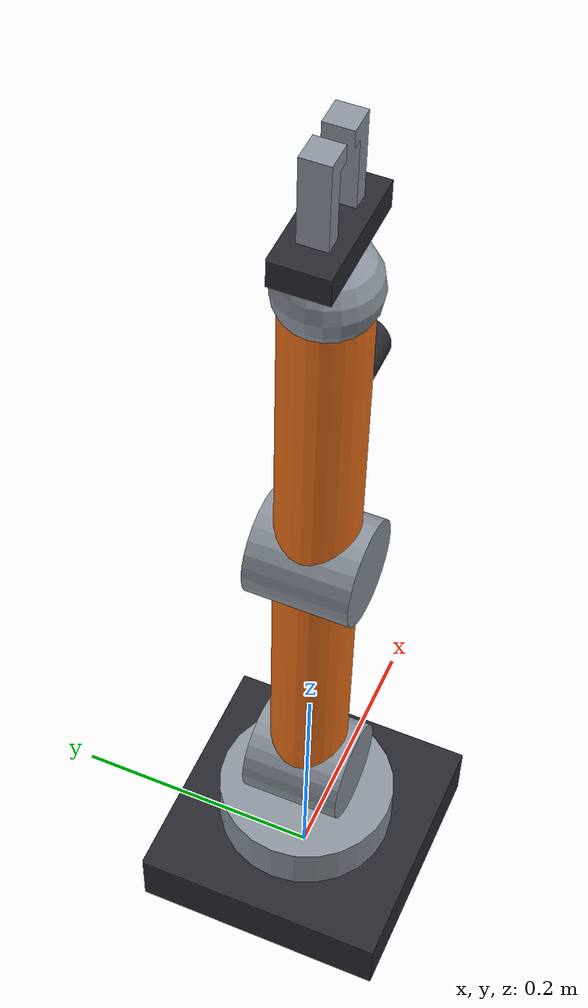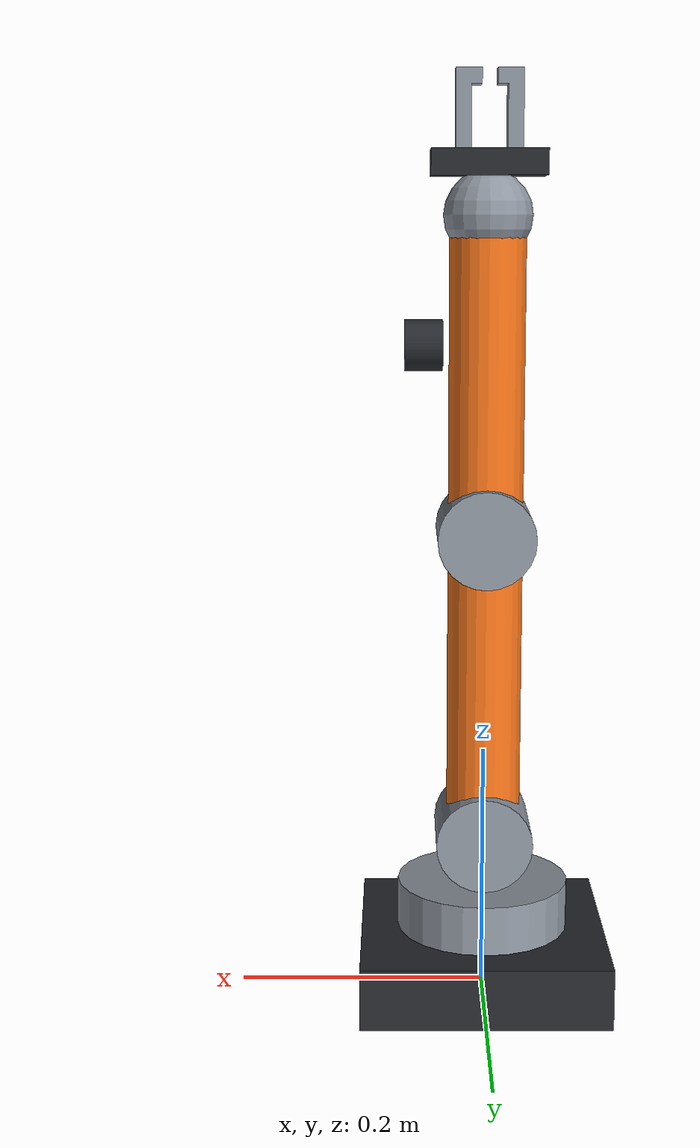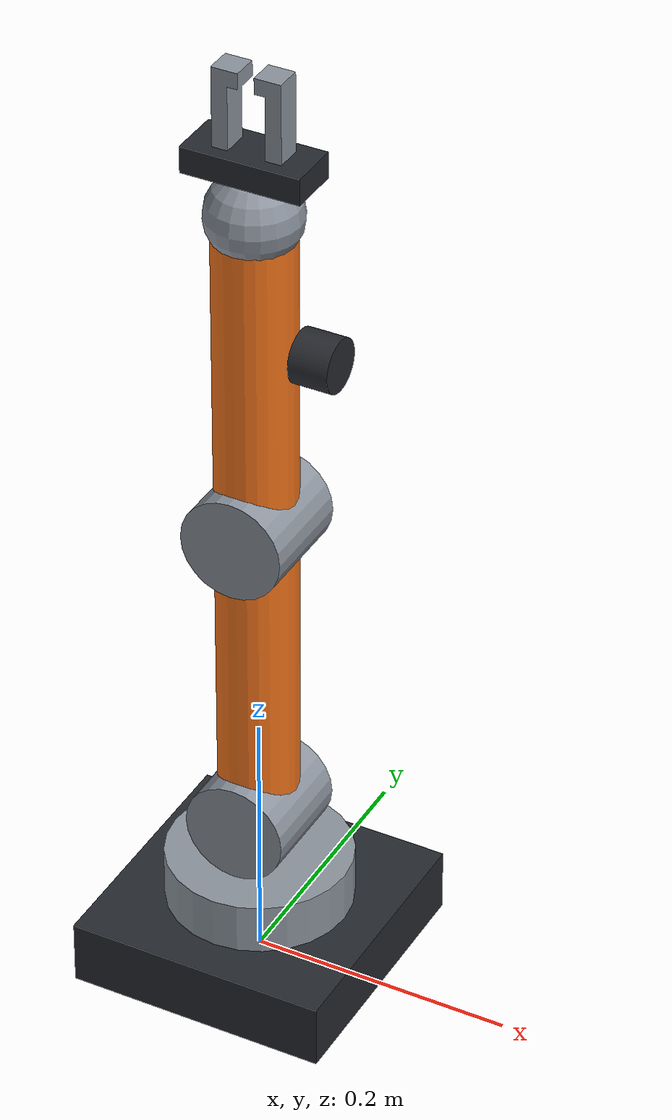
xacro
<?xml version="1.0"?>
<robot name="demo_arm" xmlns:xacro="http://www.ros.org/wiki/xacro">
  <xacro:property name="link_len" value="0.25"/>
  <xacro:property name="r" value="0.03"/>

  <material name="grey"><color rgba="0.55 0.58 0.62 1"/></material>
  <material name="orange"><color rgba="0.95 0.45 0.1 1"/></material>
  <material name="dark"><color rgba="0.15 0.16 0.18 1"/></material>

  <link name="base_link">
    <visual>
      <origin xyz="0 0 0.025"/>
      <geometry><box size="0.2 0.2 0.05"/></geometry>
      <material name="dark"/>
    </visual>
    <inertial><mass value="4.0"/><inertia ixx="0.01" iyy="0.01" izz="0.01" ixy="0" ixz="0" iyz="0"/></inertial>
  </link>

  <link name="turntable">
    <visual>
      <origin xyz="0 0 0.02"/>
      <geometry><cylinder radius="0.07" length="0.04"/></geometry>
      <material name="grey"/>
    </visual>
  </link>
  <joint name="base_yaw" type="continuous">
    <parent link="base_link"/><child link="turntable"/>
    <origin xyz="0 0 0.05"/><axis xyz="0 0 1"/>
  </joint>

  <xacro:macro name="arm_link" params="name">
    <link name="${name}">
      <visual>
        <origin xyz="0 0 ${link_len/2}"/>
        <geometry><cylinder radius="${r}" length="${link_len}"/></geometry>
        <material name="orange"/>
      </visual>
      <visual>
        <origin xyz="0 0 0" rpy="${pi/2} 0 0"/>
        <geometry><cylinder radius="${r*1.3}" length="${r*2.6}"/></geometry>
        <material name="grey"/>
      </visual>
      <inertial><mass value="1.2"/><inertia ixx="0.005" iyy="0.005" izz="0.001" ixy="0" ixz="0" iyz="0"/></inertial>
    </link>
  </xacro:macro>

  <xacro:arm_link name="upper_arm"/>
  <joint name="shoulder" type="revolute">
    <parent link="turntable"/><child link="upper_arm"/>
    <origin xyz="0 0 0.08"/><axis xyz="0 1 0"/>
    <limit lower="-1.57" upper="1.57" effort="50" velocity="1"/>
  </joint>

  <xacro:arm_link name="forearm"/>
  <joint name="elbow" type="revolute">
    <parent link="upper_arm"/><child link="forearm"/>
    <origin xyz="0 0 ${link_len}"/><axis xyz="0 1 0"/>
    <limit lower="-2.5" upper="2.5" effort="30" velocity="1"/>
  </joint>

  <link name="wrist">
    <visual><geometry><sphere radius="0.035"/></geometry><material name="grey"/></visual>
  </link>
  <joint name="wrist_roll" type="revolute">
    <parent link="forearm"/><child link="wrist"/>
    <origin xyz="0 0 ${link_len}"/><axis xyz="0 0 1"/>
    <limit lower="-3.14" upper="3.14" effort="10" velocity="2"/>
  </joint>

  <link name="palm">
    <visual>
      <origin xyz="0 0 0.01"/>
      <geometry><box size="0.09 0.04 0.02"/></geometry>
      <material name="dark"/>
    </visual>
  </link>
  <joint name="palm_mount" type="fixed">
    <parent link="wrist"/><child link="palm"/><origin xyz="0 0 0.03"/>
  </joint>

  <link name="finger_left">
    <visual><geometry><mesh filename="package://demo_arm/meshes/finger.stl"/></geometry><material name="grey"/></visual>
  </link>
  <joint name="finger_left_slide" type="prismatic">
    <parent link="palm"/><child link="finger_left"/>
    <origin xyz="-0.02 0 0.02"/><axis xyz="-1 0 0"/>
    <limit lower="0" upper="0.02" effort="5" velocity="0.05"/>
  </joint>

  <link name="finger_right">
    <visual><origin rpy="0 0 ${pi}"/><geometry><mesh filename="package://demo_arm/meshes/finger.stl"/></geometry><material name="grey"/></visual>
  </link>
  <joint name="finger_right_slide" type="prismatic">
    <parent link="palm"/><child link="finger_right"/>
    <origin xyz="0.02 0 0.02"/><axis xyz="1 0 0"/>
    <limit lower="0" upper="0.02" effort="5" velocity="0.05"/>
    <mimic joint="finger_left_slide" multiplier="1"/>
  </joint>

  <link name="camera">
    <visual><origin rpy="0 ${pi/2} 0"/><geometry><mesh filename="package://demo_arm/meshes/camera.dae"/></geometry><material name="dark"/></visual>
  </link>
  <joint name="camera_mount" type="fixed">
    <parent link="forearm"/><child link="camera"/><origin xyz="0.05 0 0.15"/>
  </joint>
</robot>
